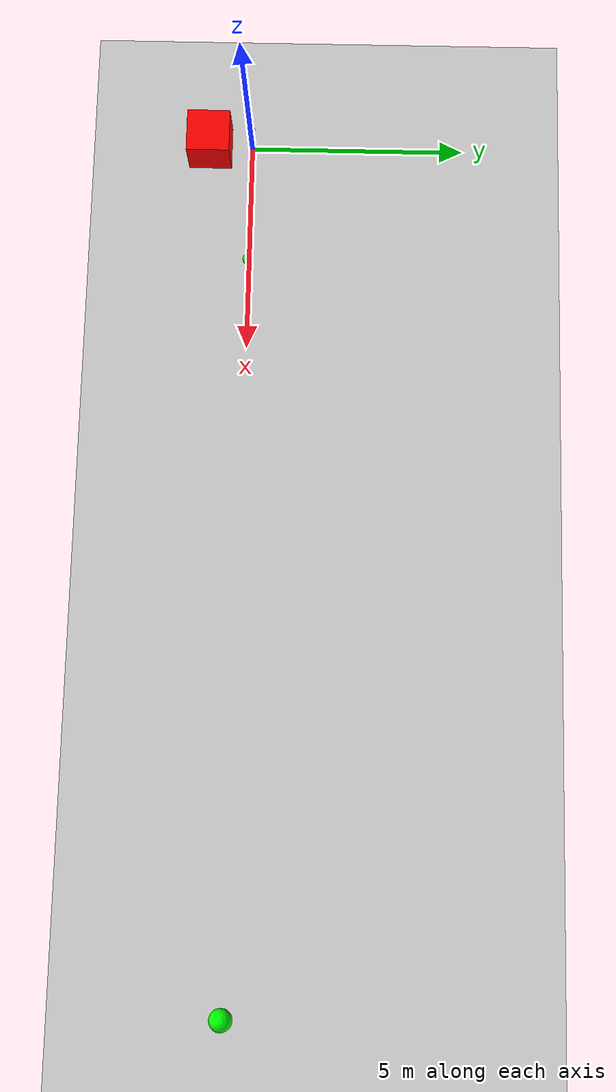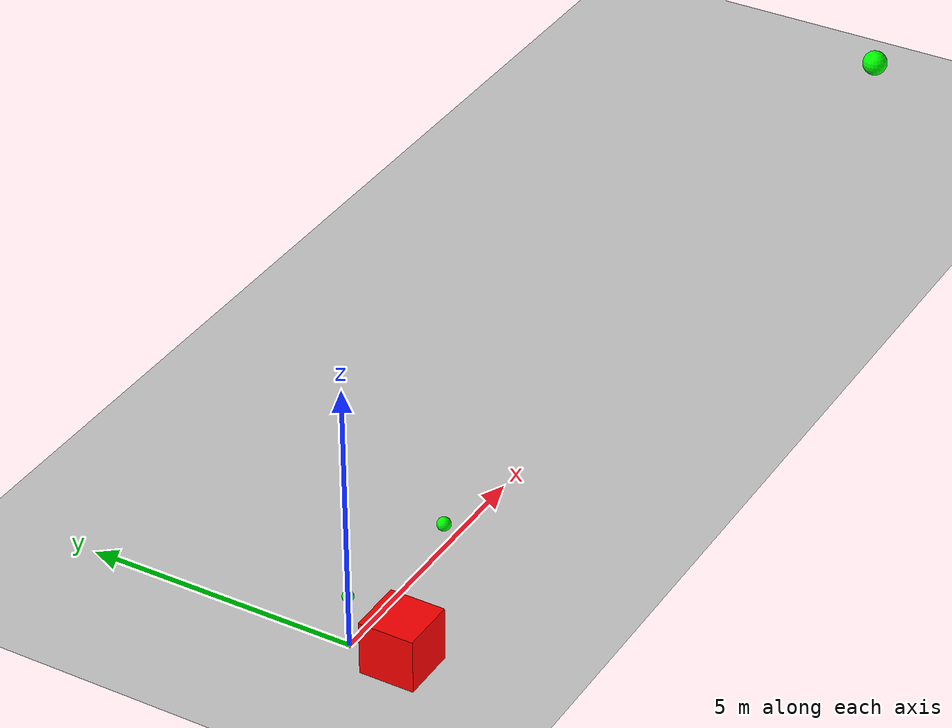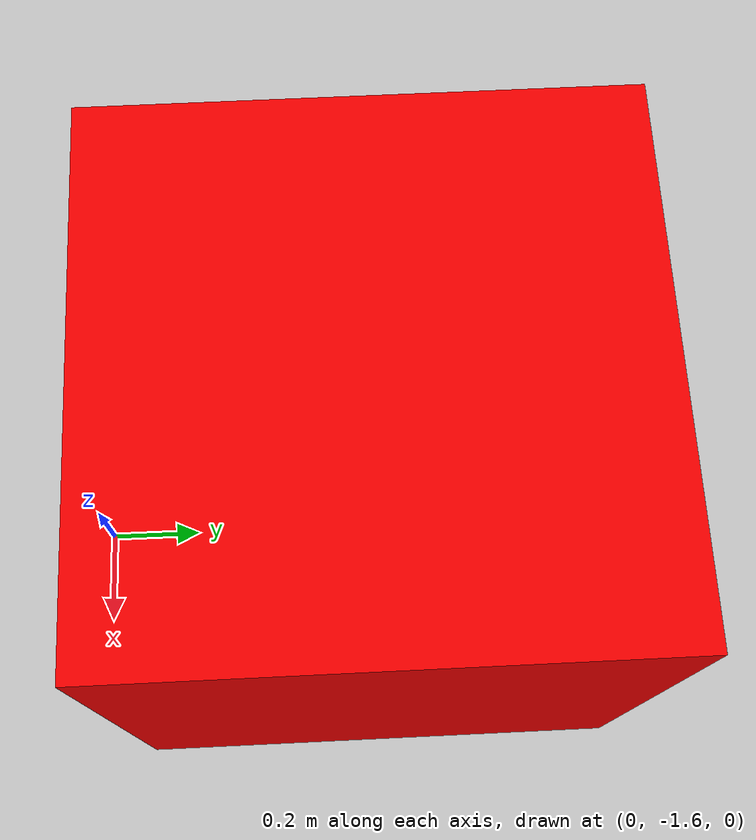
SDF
<?xml version="1.0" ?>
<!--
  gz topic -t "/pan_cmd" -m gz.msgs.Double -p "data: 0.5"
-->
<sdf version="1.6">
  <world name="default">
    <plugin
      filename="gz-sim-physics-system"
      name="gz::sim::systems::Physics">
    </plugin>
    <plugin
      filename="gz-sim-scene-broadcaster-system"
      name="gz::sim::systems::SceneBroadcaster">
    </plugin>
    <plugin
      filename="gz-sim-sensors-system"
      name="gz::sim::systems::Sensors">
      <render_engine>ogre2</render_engine>
    </plugin>
    <plugin
      filename="gz-sim-user-commands-system"
      name="gz::sim::systems::UserCommands">
    </plugin>

    <gui fullscreen="0">
      <!-- 3D scene -->
      <plugin filename="MinimalScene" name="3D View">
        <engine>ogre2</engine>
        <scene>scene</scene>
        <ambient_light>0.4 0.4 0.4</ambient_light>
        <background_color>0.8 0.8 0.8</background_color>
        <camera_pose>-6 0 6 0 0.5 0</camera_pose>
      </plugin>

      <!-- Plugins that add functionality to the scene -->
      <plugin filename="EntityContextMenuPlugin" name="Entity context menu">
        <gz-gui>
          <property key="state" type="string">floating</property>
          <property key="width" type="double">5</property>
          <property key="height" type="double">5</property>
          <property key="showTitleBar" type="bool">false</property>
        </gz-gui>
      </plugin>
      <plugin filename="GzSceneManager" name="Scene Manager">
        <gz-gui>
          <property key="resizable" type="bool">false</property>
          <property key="width" type="double">5</property>
          <property key="height" type="double">5</property>
          <property key="state" type="string">floating</property>
          <property key="showTitleBar" type="bool">false</property>
        </gz-gui>
      </plugin>
      <plugin filename="InteractiveViewControl" name="Interactive view control">
        <gz-gui>
          <property key="resizable" type="bool">false</property>
          <property key="width" type="double">5</property>
          <property key="height" type="double">5</property>
          <property key="state" type="string">floating</property>
          <property key="showTitleBar" type="bool">false</property>
        </gz-gui>
      </plugin>
      <plugin filename="CameraTracking" name="Camera Tracking">
        <gz-gui>
          <property key="resizable" type="bool">false</property>
          <property key="width" type="double">5</property>
          <property key="height" type="double">5</property>
          <property key="state" type="string">floating</property>
          <property key="showTitleBar" type="bool">false</property>
        </gz-gui>
      </plugin>
      <!-- World control -->
      <plugin filename="WorldControl" name="World control">
        <gz-gui>
          <title>World control</title>
          <property type="bool" key="showTitleBar">false</property>
          <property type="bool" key="resizable">false</property>
          <property type="double" key="height">72</property>
          <property type="double" key="z">1</property>

          <property type="string" key="state">floating</property>
          <anchors target="3D View">
            <line own="left" target="left"/>
            <line own="bottom" target="bottom"/>
          </anchors>
        </gz-gui>

        <play_pause>true</play_pause>
        <step>true</step>
        <start_paused>true</start_paused>
        <use_event>true</use_event>

      </plugin>

      <!-- World statistics -->
      <plugin filename="WorldStats" name="World stats">
        <gz-gui>
          <title>World stats</title>
          <property type="bool" key="showTitleBar">false</property>
          <property type="bool" key="resizable">false</property>
          <property type="double" key="height">110</property>
          <property type="double" key="width">290</property>
          <property type="double" key="z">1</property>

          <property type="string" key="state">floating</property>
          <anchors target="3D View">
            <line own="right" target="right"/>
            <line own="bottom" target="bottom"/>
          </anchors>
        </gz-gui>

        <sim_time>true</sim_time>
        <real_time>true</real_time>
        <real_time_factor>true</real_time_factor>
        <iterations>true</iterations>
      </plugin>

      <plugin filename="ImageDisplay" name="Image Display">
        <gz-gui>
          <property key="state" type="string">docked</property>
        </gz-gui>
        <topic>camera</topic>
      </plugin>

      <!-- Inspector -->
      <plugin filename="ComponentInspector" name="Component inspector">
        <gz-gui>
          <property type="string" key="state">docked</property>
        </gz-gui>
      </plugin>

      <!-- Entity tree -->
      <plugin filename="EntityTree" name="Entity tree">
        <gz-gui>
          <property type="string" key="state">docked</property>
        </gz-gui>
      </plugin>
    </gui>

    <model name="ground_plane">
      <static>true</static>
      <link name="link">
        <collision name="collision">
          <geometry>
            <plane>
              <normal>0 0 1</normal>
              <size>100 100</size>
            </plane>
          </geometry>
        </collision>
        <visual name="visual">
          <geometry>
            <plane>
              <normal>0 0 1</normal>
              <size>100 100</size>
            </plane>
          </geometry>
          <material>
            <ambient>0.8 0.8 0.8 1</ambient>
            <diffuse>0.8 0.8 0.8 1</diffuse>
            <specular>0.8 0.8 0.8 1</specular>
          </material>
        </visual>
      </link>
    </model>

    <model name="box">
      <pose>0 -1 0.5 0 0 0</pose>
      <link name="box_link">
        <inertial>
          <inertia>
            <ixx>1</ixx>
            <ixy>0</ixy>
            <ixz>0</ixz>
            <iyy>1</iyy>
            <iyz>0</iyz>
            <izz>1</izz>
          </inertia>
          <mass>1.0</mass>
        </inertial>
        <collision name="box_collision">
          <geometry>
            <box>
              <size>1 1 1</size>
            </box>
          </geometry>
        </collision>

        <visual name="box_visual">
          <geometry>
            <box>
              <size>1 1 1</size>
            </box>
          </geometry>
          <material>
            <ambient>1 0 0 1</ambient>
            <diffuse>1 0 0 1</diffuse>
            <specular>1 0 0 1</specular>
          </material>
        </visual>
      </link>
    </model>

    <model name="sphere">
      <static>true</static>
      <pose>3 0 0.5 0 0 0</pose>
      <link name="sphere_link">
        <collision name="sphere_collision">
          <geometry>
            <sphere>
              <radius>0.125</radius>
            </sphere>
          </geometry>
        </collision>
        <visual name="sphere_visual">
          <geometry>
            <sphere>
              <radius>0.125</radius>
            </sphere>
          </geometry>
          <material>
            <ambient>0 1 0 1</ambient>
            <diffuse>0 1 0 1</diffuse>
            <specular>0 1 0 1</specular>
          </material>
          <cast_shadows>false</cast_shadows>
        </visual>
      </link>
    </model>

    <model name="sphere2">
      <static>true</static>
      <pose>20 0 1 0 0 0</pose>
      <link name="sphere_link">
        <collision name="sphere_collision">
          <geometry>
            <sphere>
              <radius>0.25</radius>
            </sphere>
          </geometry>
        </collision>
        <visual name="sphere_visual">
          <geometry>
            <sphere>
              <radius>0.25</radius>
            </sphere>
          </geometry>
          <material>
            <ambient>0 1 0 1</ambient>
            <diffuse>0 1 0 1</diffuse>
            <specular>0 1 0 1</specular>
          </material>
          <cast_shadows>false</cast_shadows>
        </visual>
      </link>
    </model>

    <light type="directional" name="sun">
      <cast_shadows>true</cast_shadows>
      <pose>0 0 10 0 0 0</pose>
      <diffuse>1 1 1 1</diffuse>
      <specular>0.5 0.5 0.5 1</specular>
      <attenuation>
        <range>1000</range>
        <constant>0.9</constant>
        <linear>0.01</linear>
        <quadratic>0.001</quadratic>
      </attenuation>
      <direction>-0.5 0.1 -0.9</direction>
    </light>

    <model name="PTZCamera">
      <pose>0 0 0 0 1.57 0</pose>
      <!-- Cylinder -->
      <link name="base_link">
        <pose>0.0 0.0 0.0 0 0 0</pose>
        <inertial>
          <inertia>
            <ixx>2.501</ixx>
            <ixy>0</ixy>
            <ixz>0</ixz>
            <iyy>2.501</iyy>
            <iyz>0</iyz>
            <izz>5</izz>
          </inertia>
          <mass>120.0</mass>
        </inertial>
        <visual name="base_visual">
          <pose>-.5 0.0 0.0 0 -1.57 0</pose>
          <geometry>
            <cylinder>
              <radius>0.05</radius>
              <length>1</length>
            </cylinder>
          </geometry>
        </visual>
        <collision name="base_collision">
          <pose>0.0 0.0 0.0 0 0 0</pose>
          <geometry>
            <cylinder>
              <radius>0.05</radius>
              <length>0.1</length>
            </cylinder>
          </geometry>
        </collision>
      </link>
      <link name="camera">
        <pose>-1.01 0.0 0.0 0 -1.57 0</pose>
        <inertial>
          <inertia>
            <ixx>0.032</ixx>
            <ixy>0</ixy>
            <ixz>0</ixz>
            <iyy>0.032</iyy>
            <iyz>0</iyz>
            <izz>0.00012</izz>
          </inertia>
          <mass>0.6</mass>
        </inertial>
        <visual name="visual">
          <geometry>
            <sphere>
              <radius>0.1</radius>
            </sphere>
          </geometry>
          <material>
            <ambient>0 1 0 1</ambient>
            <diffuse>0 1 0 1</diffuse>
            <specular>0 1 0 1</specular>
          </material>
        </visual>
        <collision name="collision">
          <geometry>
            <box>
              <size>0.25 0.1 0.05</size>
            </box>
          </geometry>
        </collision>
        <sensor name="camera_zoomx1" type="camera">
          <camera>
            <horizontal_fov>1.22173</horizontal_fov>
            <image>
              <width>640</width>
              <height>480</height>
            </image>
            <clip>
              <near>0.1</near>
              <far>100</far>
            </clip>
          </camera>
          <always_on>1</always_on>
          <update_rate>30</update_rate>
          <visualize>true</visualize>
          <topic>camera_x1</topic>
        </sensor>
        <sensor name="camera_zoomx2" type="camera">
          <camera>
            <horizontal_fov>0.6735</horizontal_fov>
            <image>
              <width>640</width>
              <height>480</height>
            </image>
            <clip>
              <near>0.1</near>
              <far>100</far>
            </clip>
          </camera>
          <always_on>1</always_on>
          <update_rate>30</update_rate>
          <visualize>true</visualize>
          <topic>camera_x2</topic>
        </sensor>
        <sensor name="camera_zoomx3" type="camera">
          <camera>
            <horizontal_fov>0.48559</horizontal_fov>
            <image>
              <width>640</width>
              <height>480</height>
            </image>
            <clip>
              <near>0.1</near>
              <far>100</far>
            </clip>
          </camera>
          <always_on>1</always_on>
          <update_rate>30</update_rate>
          <visualize>true</visualize>
          <topic>camera_x3</topic>
        </sensor>
        <sensor name="camera_zoomx4" type="camera">
          <camera>
            <horizontal_fov>0.34659</horizontal_fov>
            <image>
              <width>640</width>
              <height>480</height>
            </image>
            <clip>
              <near>0.1</near>
              <far>100</far>
            </clip>
          </camera>
          <always_on>1</always_on>
          <update_rate>30</update_rate>
          <visualize>true</visualize>
          <topic>camera_x4</topic>
        </sensor>
      </link>
      <link name="intermediate">
        <pose>-1.01 0.0 0.0 0 -1.57 0</pose>
        <inertial>
          <inertia>
            <ixx>0.032</ixx>
            <ixy>0</ixy>
            <ixz>0</ixz>
            <iyy>0.032</iyy>
            <iyz>0</iyz>
            <izz>0.00012</izz>
          </inertia>
          <mass>0.6</mass>
        </inertial>
      </link>

      <joint name="world_fixed" type="fixed">
        <parent>world</parent>
        <child>base_link</child>
      </joint>

      <!-- Joint between base cylinder and sphere for pan -->
      <joint name="pan" type="revolute">
        <parent>base_link</parent>
        <child>intermediate</child>
        <axis>
          <xyz>0 0 1</xyz>
          <dynamics>
            <damping>1</damping>
          </dynamics>
        </axis>
      </joint>
      <plugin
        filename="gz-sim-joint-position-controller-system"
        name="gz::sim::systems::JointPositionController">
        <joint_name>pan</joint_name>
        <topic>/pan_cmd</topic>
        <p_gain>1</p_gain>
        <i_gain>0.1</i_gain>
        <d_gain>0.01</d_gain>
        <i_max>1</i_max>
        <i_min>-1</i_min>
        <cmd_max>1000</cmd_max>
        <cmd_min>-1000</cmd_min>
      </plugin>

      <!-- Joint between base cylinder and sphere for tilt -->
      <joint name="tilt" type="revolute">
        <parent>intermediate</parent>
        <child>camera</child>
        <axis>
          <xyz>0 1 0</xyz>
          <dynamics>
            <damping>1</damping>
          </dynamics>
        </axis>
      </joint>
      <plugin
        filename="gz-sim-joint-position-controller-system"
        name="gz::sim::systems::JointPositionController">
        <joint_name>/tilt</joint_name>
        <topic>tilt_cmd</topic>
        <p_gain>1</p_gain>
        <i_gain>0.1</i_gain>
        <d_gain>0.01</d_gain>
        <i_max>1</i_max>
        <i_min>-1</i_min>
        <cmd_max>1000</cmd_max>
        <cmd_min>-1000</cmd_min>
      </plugin>

      <plugin
          filename="gz-sim-joint-controller-system"
          name="gz::sim::systems::JointController">
        <joint_name>tilt</joint_name>
        <joint_name>pan</joint_name>
        <use_actuator_msg>true</use_actuator_msg>
        <actuator_number>0</actuator_number>
      </plugin>

      <plugin
        filename="gz-sim-joint-state-publisher-system"
        name="gz::sim::systems::JointStatePublisher">
        <joint_name>tilt</joint_name>
        <joint_name>pan</joint_name>
      </plugin>
      <plugin
        filename="gz-sim-joint-state-publisher-system"
        name="gz::sim::systems::JointStatePublisher">
        <joint_name>pan</joint_name>
        <topic>ptz_gz_pan</topic>
      </plugin>
      <plugin
        filename="gz-sim-joint-state-publisher-system"
        name="gz::sim::systems::JointStatePublisher">
        <joint_name>tilt</joint_name>
        <topic>ptz_gz_tilt</topic>
      </plugin>
    </model>
  </world>
</sdf>
